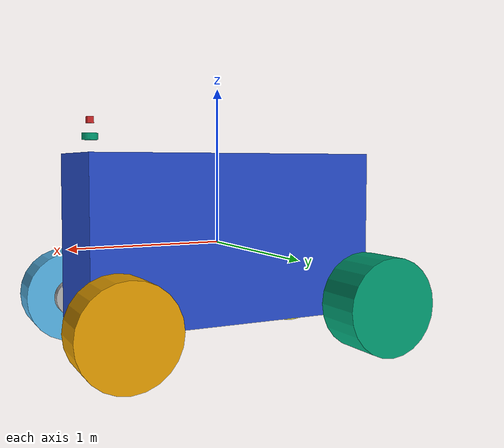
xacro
<?xml version="1.0"?>
<robot xmlns:xacro="http://www.ros.org/wiki/xacro" name="basic_laser_pig">

    <!-- Degree-to-radian conversions -->
    <xacro:property name="degrees_45" value="0.785398163"/>
    <xacro:property name="degrees_90" value="1.57079633"/>
    <xacro:property name="degrees_180" value="3.14159265"/>

    <!-- vehiclur velocity properties -->
    <xacro:property name="steering_speed" value="1.0472"/> <!-- units of rad/s -->
    <xacro:property name="steering_max_angle" value="0.3"/> <!-- units of rad -->
    <xacro:property name="steering_min_angle" value="-0.3"/> <!-- units of rad -->
    <xacro:property name="traverse_max_speed" value="4.785"/> <!-- units of m/s -->

    <!-- Inertia Generator -->
    <xacro:macro name="default_inertial" params="mass">
        <inertial>
            <mass value="${mass}" />
            <inertia ixx="1.0" ixy="0.0" ixz="0.0" iyy="1.0" iyz="0.0" izz="1.0" />
        </inertial>
    </xacro:macro>

    <!-- Basic Geometry of Body -->
    <xacro:property name="body_length" value="1.91" />
    <xacro:property name="body_width" value="0.680618" />
    <xacro:property name="body_height" value="1.065022" />
    <xacro:property name="body_mass" value="20.3"/>

    <!-- Front Wheel Properties -->
    <xacro:property name="front_wheel_width" value=".254" />
    <xacro:property name="front_wheel_diameter" value="0.605" />
    <xacro:property name="front_wheel_mass" value="20"/>

    <!-- Steering Link Properties -->
    <xacro:property name="steering_width" value="${front_wheel_width/4}" />
    <xacro:property name="steering_diameter" value="${front_wheel_diameter/5}" />
    <xacro:property name="steering_mass" value="2"/>

    <!-- Rear Wheel Properties -->
    <xacro:property name="rear_wheel_width" value="${front_wheel_width+steering_width}" />
    <xacro:property name="rear_wheel_diameter" value="0.635" />
    <xacro:property name="rear_wheel_mass" value="22.8"/>

    <!-- Camera Properties -->
    <xacro:property name="camera_link" value="0.04"/>

    <!-- Testing Laser link xacro -->
    <xacro:include filename="$(find little_pig_description)/urdf/basic_laser_pig.gazebo" />

    <!-- Dummy Base Link -->
    <link name="base_link" />

    <!-- Actual Base Link -->
    <link name="chassis">
        <visual>
            <origin xyz="0.0 0.0 0.0" rpy="0.0 0.0 0.0"/>
            <geometry>
                <box size="${body_length} ${body_width} ${body_height}"/>
            </geometry>
            <material name="blue" />
        </visual>
        <collision>
            <origin xyz="0.0 0.0 0.0" rpy="0.0 0.0 0.0"/>
            <geometry>
                <box size="${body_length} ${body_width} ${body_height}"/>
            </geometry>
        </collision>
        <xacro:default_inertial mass="${body_mass}"/>
    </link>
    <joint name="base_link_joint" type="fixed">
        <origin xyz="0 0 0.05" rpy="0 0 0" />
        <parent link="base_link" />
        <child link="chassis" />
    </joint>

    <!-- Laser link -->
    <joint name="laser_link_joint" type="fixed">
      <axis xyz="0 0 0" />
      <origin xyz="${(body_length/2) - 0.1} 0.0 ${(body_height/2 + 0.1)}" rpy="0 0 0"/>
      <parent link="chassis"/>
      <child link="laser_link"/>
    </joint>

     <!-- Laser -->
    <link name="laser_link">
      <collision>
        <origin xyz="0 0 0" rpy="0 0 0"/>
        <geometry>
          <cylinder radius=".05" length="0.04"/>
        </geometry>
      </collision>
      <visual>
        <origin xyz="0 0 0" rpy="0 0 0"/>
        <geometry>
          <cylinder radius=".05" length="0.04"/>
        </geometry>
      </visual>
      <inertial>
        <mass value="1e-5" />
        <origin xyz="0 0 0" rpy="0 0 0"/>
        <inertia ixx="1e-6" ixy="0" ixz="0" iyy="1e-6" iyz="0" izz="1e-6" />
      </inertial>
    </link>

    <!-- Camera -->
    <joint name="camera_link_joint" type="fixed">
      <axis xyz="0 1 0" />
      <origin xyz="${(body_length/2) - 0.1} 0.0 ${(body_height/2 + 0.2)}" rpy="0 0 0"/>
      <parent link="chassis"/>
      <child link="camera_link"/>
    </joint>
    <link name="camera_link">
      <collision>
        <origin xyz="0 0 0" rpy="0 0 0"/>
        <geometry>
      <box size="${camera_link} ${camera_link} ${camera_link}"/>
        </geometry>
      </collision>
      <visual>
        <origin xyz="0 0 0" rpy="0 0 0"/>
        <geometry>
      <box size="${camera_link} ${camera_link} ${camera_link}"/>
        </geometry>
        <material name="red"/>
      </visual>
      <inertial>
        <mass value="1e-5" />
        <origin xyz="0 0 0" rpy="0 0 0"/>
        <inertia ixx="1e-6" ixy="0" ixz="0" iyy="1e-6" iyz="0" izz="1e-6" />
      </inertial>
    </link>

    <!-- IMU -->
    <joint name="imu_joint" type="fixed">
      <axis xyz="1 0 0 "/>
      <origin xyz="0 0 0.19"/>
      <parent link ="chassis"/>
      <child link ="imu_link"/>
    </joint>
    <link name="imu_link">
	<inertial>
	    <mass value="0.001"/>
	    <origin rpy="0 0 0" xyz="0 0 0"/>
	    <inertia ixx="0.0001" ixy="0" ixz="0" iyy="0.000001" iyz="0" izz="0.0001"/>
	</inertial>
	<visual>
	    <origin rpy="0 0 0" xyz="0 0 0"/>
	    <geometry>
	      <box size="0.001 0.001 0.001"/>
	    </geometry>
	</visual>
	  <collision>
	    <origin rpy="0 0 0" xyz="0 0 0"/>
	    <geometry>
	      <box size=".001 .001 .001"/>
	    </geometry>
	  </collision>
	</link>
    <!-- GPS -->
    <joint name="gps_joint" type="fixed">
      <axis xyz="0 0 0 "/>
      <origin xyz="0 0 0.19"/>
      <parent link ="chassis"/>
      <child link ="gps_link"/>
    </joint>
    <link name="gps_link">
	<inertial>
	    <mass value="0.001"/>
	    <origin rpy="0 0 0" xyz="0 0 0"/>
	    <inertia ixx="0.0001" ixy="0" ixz="0" iyy="0.000001" iyz="0" izz="0.0001"/>
	</inertial>
	<visual>
	    <origin rpy="0 0 0" xyz="0 0 0"/>
	    <geometry>
	      <box size="0.001 0.001 0.001"/>
	    </geometry>
	</visual>
	  <collision>
	    <origin rpy="0 0 0" xyz="0 0 0"/>
	    <geometry>
	      <box size=".001 .001 .001"/>
	    </geometry>
	  </collision>
	</link>

    <!-- Steering Macro -->
    <xacro:macro name="steering_link" params="prefix reflect">

        <link name="${prefix}_steering_link">
            <visual>
                <origin xyz="0.0 0.0 0.0" rpy="${degrees_90} 0.0 0.0"/>
                <geometry>
                    <cylinder radius="${steering_diameter}" length="${steering_width}"/>
                </geometry>
            </visual>
            <collision>
                <origin xyz="0.0 0.0 0.0" rpy="${degrees_90} 0.0 0.0"/>
                <geometry>
                    <cylinder radius="${steering_diameter}" length="${steering_width}"/>
                </geometry>
            </collision>
            <xacro:default_inertial mass="${steering_mass}"/>
        </link>

        <joint name="${prefix}_steering_joint" type="revolute">
            <parent link="chassis"/>
            <child link="${prefix}_steering_link"/>
            <axis xyz="0.0 0.0 0.1"/>
            <origin xyz="${(body_length / 2)- 0.1} ${(body_width / 2 + steering_width / 2 + 0.1) * reflect} ${-(body_height/2) + 0.1}" rpy="0.0 0.0 0.0"/>
            <limit lower="${steering_min_angle}" upper="${steering_max_angle}" effort="100000.00" velocity="${steering_speed}"/>
            <!-- effort needs to be very high so we are not constrained by the environment-->
        </joint>

        <!-- The Transmission -->
        <transmission name="${prefix}_steering_link_trans">
            <type>transmission_interface/SimpleTransmission</type>
            <joint name="${prefix}_steering_joint">
                <hardwareInterface>hardware_interface/PositionJointInterface</hardwareInterface>
            </joint>
            <actuator name="${prefix}_steering_link_motor">
                <hardwareInterface>hardware_interface/PositionJointInterface</hardwareInterface>
                <mechanicalReduction>1</mechanicalReduction>
            </actuator>
        </transmission>

    </xacro:macro>

    <!-- Front Wheel Macro -->
    <xacro:macro name="front_wheel_link" params="prefix reflect">

        <link name="${prefix}_front_wheel">
            <visual>
                <origin xyz="0.0 0.0 0.0" rpy="${degrees_90} 0.0 0.0"/>
                <geometry>
                    <cylinder radius="${front_wheel_diameter/2}" length="${front_wheel_width}"/>
                </geometry>
            </visual>
            <collision>
                <origin xyz="0.0 0.0 0.0" rpy="${degrees_90} 0.0 0.0"/>
                <geometry>
                    <cylinder radius="${front_wheel_diameter/2}" length="${front_wheel_width}"/>
                </geometry>
		<surface>
			<friction>
				<torsional>
					<coefficient>2.0</coefficient>
					<surface_radius>.3025</surface_radius>
					<use_patch_radius>false</use_patch_radius>
					<ode>
						<slip>0.5</slip>
					</ode>
				</torsional>
				<ode>
					<mu>50000.00</mu>
					<mu2>50000.00</mu2>
					<fdir1>1.00000 0.00000 0.00000</fdir1>
					<slip1>0.00000</slip1>
					<slip2>0.00000</slip2>
				</ode>
			</friction>
			<contact>
				<ode>
					<min_depth>0.03</min_depth>
				</ode>
			</contact>
		</surface>
            </collision>
            <xacro:default_inertial mass="${front_wheel_mass}"/>
        </link>

        <joint name="${prefix}_front_axle" type="continuous">
            <parent link="${prefix}_steering_link"/>
            <child link="${prefix}_front_wheel"/>
            <axis xyz="0.0 0.1 0.0"/>
            <origin xyz="0 ${(front_wheel_width/2 + steering_width/2) * reflect} 0"/>
            <limit effort="100000.00" velocity="${traverse_max_speed * 2 / front_wheel_diameter}"/> <!-- units of rad/s -->
            <!-- effort needs to be very high so we are not constrained by the environment-->
        </joint>

        <!-- The Transmission -->
        <transmission name="${prefix}_front_wheel_trans">
            <type>transmission_interface/SimpleTransmission</type>
            <joint name="${prefix}_front_axle">
                <hardwareInterface>hardware_interface/VelocityJointInterface</hardwareInterface>
            </joint>
            <actuator name="${prefix}_front_wheel_motor">
                <hardwareInterface>hardware_interface/VelocityJointInterface</hardwareInterface>
                <mechanicalReduction>1</mechanicalReduction>
            </actuator>
        </transmission>

    </xacro:macro>

    <!-- Rear Wheel Macro -->
    <xacro:macro name="rear_wheel_link" params="prefix reflect">

        <link name="${prefix}_rear_wheel">
            <visual>
                <origin xyz="0.0 0.0 0.0" rpy="${degrees_90} 0.0 0.0"/>
                <geometry>
                    <cylinder radius="${rear_wheel_diameter/2}" length="${rear_wheel_width}"/>
                </geometry>
            </visual>
            <collision>
                <origin xyz="0.0 0.0 0.0" rpy="${degrees_90} 0.0 0.0"/>
                <geometry>
                    <cylinder radius="${rear_wheel_diameter/2}" length="0.04"/>
                </geometry>
            </collision>
            <xacro:default_inertial mass="${rear_wheel_mass}"/>
        </link>

        <gazebo reference="{prefix}_rear_wheel">
          <mu1 value="1.0"/>
          <mu2 value="1.0"/>
          <kp value="1000000000.0"/>
          <kd value="1.0"/>
          <fdir1 value="1 0 0"/>
        </gazebo>

        <joint name="${prefix}_rear_axle" type="continuous">
            <parent link="chassis"/>
            <child link="${prefix}_rear_wheel"/>
            <axis xyz="0.0 0.1 0.0"/>
            <origin xyz="${-(body_length/2) + 0.1} ${(rear_wheel_width/2 + body_width/2 + 0.1) * reflect} ${-(body_height/2) + 0.1}"/>
            <!-- rolling axle -->
        </joint>

        <!-- The Transmission -->
        <transmission name="${prefix}_rear_wheel_trans">
            <type>transmission_interface/SimpleTransmission</type>
            <joint name="${prefix}_rear_axle">
                <!-- rolling axle -->
                <hardwareInterface>hardware_interface/EffortJointInterface</hardwareInterface>
            </joint>
            <actuator name="${prefix}_rear_wheel_motor">
                <!-- rolling axle -->
                <hardwareInterface>hardware_interface/EffortJointInterface</hardwareInterface>
                <mechanicalReduction>1</mechanicalReduction>
            </actuator>
        </transmission>

    </xacro:macro>

    <xacro:steering_link prefix="left" reflect="1" />
    <xacro:steering_link prefix="right" reflect="-1" />

    <xacro:front_wheel_link prefix="left" reflect="1" />
    <xacro:front_wheel_link prefix="right" reflect="-1" />

    <xacro:rear_wheel_link prefix="left" reflect="1" />
    <xacro:rear_wheel_link prefix="right" reflect="-1" />

    <!-- Gazebo plugin for ROS Control -->
    <gazebo>
        <plugin name="gazebo_ros_control" filename="libgazebo_ros_control.so">
            <robotSimType>gazebo_ros_control/AckermannRobotHWSim</robotSimType> <!-- THIS IS NEW -->
        </plugin>

        <plugin name="imu_plugin" filename="libhector_gazebo_ros_imu.so">
            <alwaysOn>true</alwaysOn>
            <bodyName>chassis</bodyName>
            <topicName>imu</topicName>
            <serviceName>imu_service</serviceName>
            <gaussianNoise>0.0</gaussianNoise>
            <updateRate>20.0</updateRate>
        </plugin>

        <plugin name="gps_plugin" filename="libhector_gazebo_ros_gps.so">
            <alwayson>1</alwayson>
            <updaterate>10.0</updaterate>
            <bodyname>chassis</bodyname>
            <topicname>fix</topicname>
            <velocitytopicname>fix_vel</velocitytopicname>
            <referenceLatitude>37.634047</referenceLatitude>
            <referenceLongitude>-97.269368</referenceLongitude>
        </plugin>

    </gazebo>

</robot>
